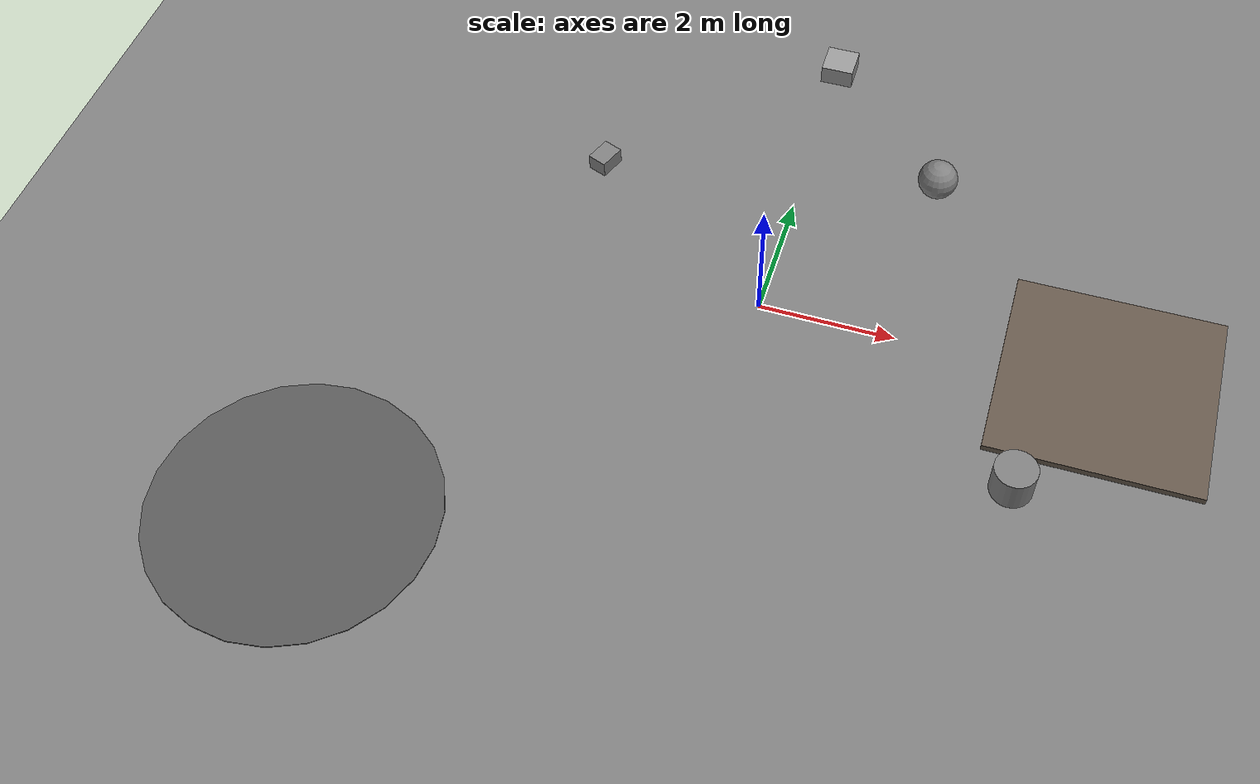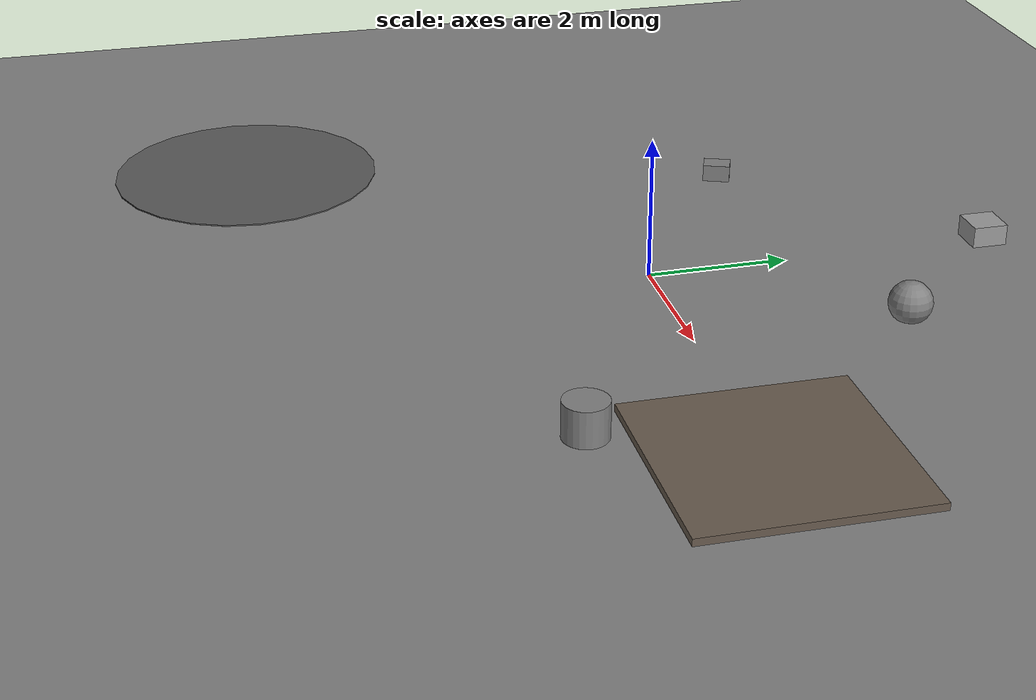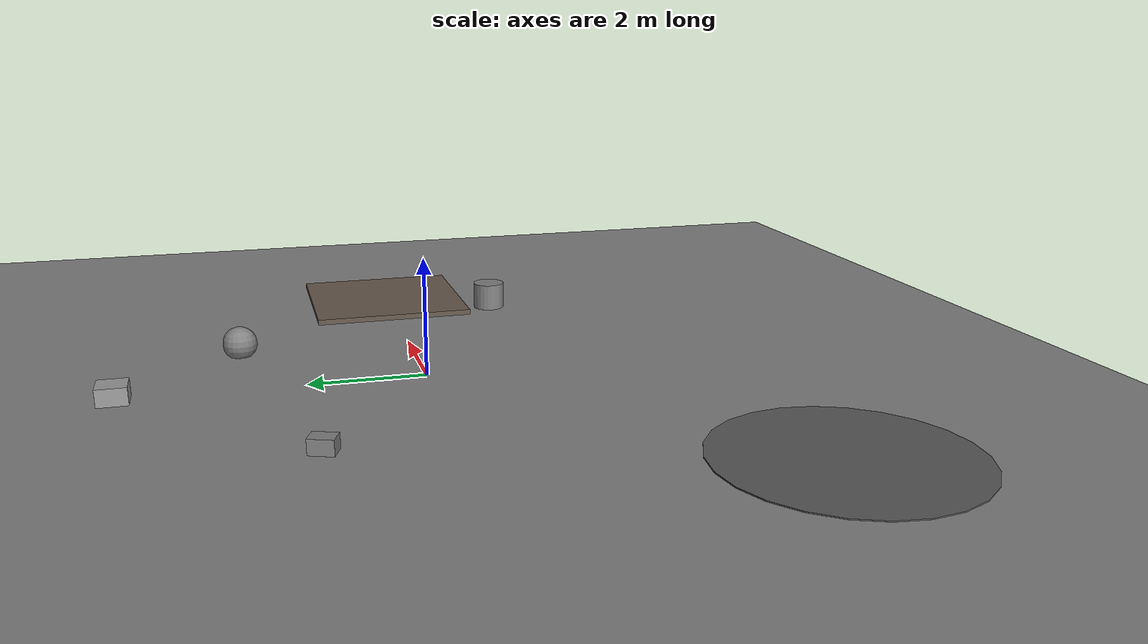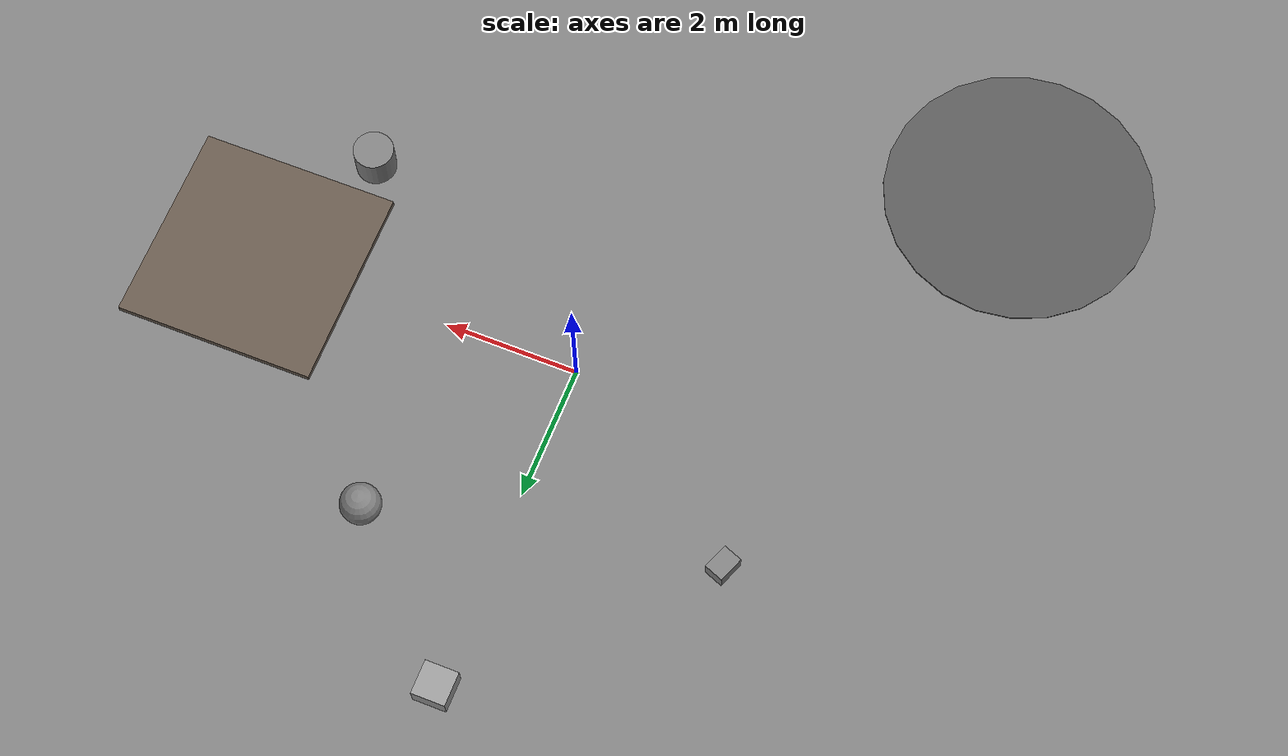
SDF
<?xml version="1.0"?>
<sdf version="1.6">
  <world name="lunar_arena">

    <!-- Physics -->
    <physics type="ode">
      <max_step_size>0.001</max_step_size>
      <real_time_factor>1.0</real_time_factor>
      <real_time_update_rate>1000</real_time_update_rate>
      <gravity>0 0 -1.62</gravity> <!-- Moon gravity (1/6 of Earth) -->
    </physics>

    <!-- Lighting - Harsh lunar lighting -->
    <light type="directional" name="sun">
      <cast_shadows>true</cast_shadows>
      <pose>0 0 100 0 0 0</pose>
      <diffuse>1.0 1.0 1.0 1</diffuse>
      <specular>0.2 0.2 0.2 1</specular>
      <attenuation>
        <range>1000</range>
        <constant>0.9</constant>
        <linear>0.01</linear>
        <quadratic>0.001</quadratic>
      </attenuation>
      <direction>-0.5 0.1 -0.9</direction>
    </light>

    <!-- Ambient light (very low, like the moon) -->
    <scene>
      <ambient>0.1 0.1 0.1 1</ambient>
      <background>0.0 0.0 0.0 1</background>
      <shadows>true</shadows>
    </scene>

    <!-- Lunar surface ground plane -->
    <model name="lunar_ground">
      <static>true</static>
      <link name="link">
        <collision name="collision">
          <geometry>
            <plane>
              <normal>0 0 1</normal>
              <size>50 50</size>
            </plane>
          </geometry>
          <surface>
            <friction>
              <ode>
                <mu>0.8</mu>
                <mu2>0.8</mu2>
              </ode>
            </friction>
          </surface>
        </collision>
        <visual name="visual">
          <geometry>
            <plane>
              <normal>0 0 1</normal>
              <size>50 50</size>
            </plane>
          </geometry>
          <material>
            <ambient>0.4 0.4 0.4 1</ambient>
            <diffuse>0.5 0.5 0.5 1</diffuse>
            <specular>0.1 0.1 0.1 1</specular>
          </material>
        </visual>
      </link>
    </model>

    <!-- Regolith (lunar dust) area - Mining zone -->
    <model name="regolith_zone">
      <static>true</static>
      <pose>5 0 0.05 0 0 0</pose>
      <link name="link">
        <collision name="collision">
          <geometry>
            <box>
              <size>3 3 0.1</size>
            </box>
          </geometry>
          <surface>
            <friction>
              <ode>
                <mu>1.2</mu>
                <mu2>1.2</mu2>
              </ode>
            </friction>
          </surface>
        </collision>
        <visual name="visual">
          <geometry>
            <box>
              <size>3 3 0.1</size>
            </box>
          </geometry>
          <material>
            <ambient>0.3 0.25 0.2 1</ambient>
            <diffuse>0.4 0.35 0.3 1</diffuse>
          </material>
        </visual>
      </link>
    </model>

    <!-- Rocks/Obstacles -->
    <model name="rock_1">
      <static>true</static>
      <pose>2 3 0.2 0 0 0.5</pose>
      <link name="link">
        <collision name="collision">
          <geometry>
            <sphere>
              <radius>0.3</radius>
            </sphere>
          </geometry>
        </collision>
        <visual name="visual">
          <geometry>
            <sphere>
              <radius>0.3</radius>
            </sphere>
          </geometry>
          <material>
            <ambient>0.3 0.3 0.3 1</ambient>
            <diffuse>0.5 0.5 0.5 1</diffuse>
          </material>
        </visual>
      </link>
    </model>

    <model name="rock_2">
      <static>true</static>
      <pose>-3 2 0.15 0 0 1.2</pose>
      <link name="link">
        <collision name="collision">
          <geometry>
            <box>
              <size>0.4 0.3 0.25</size>
            </box>
          </geometry>
        </collision>
        <visual name="visual">
          <geometry>
            <box>
              <size>0.4 0.3 0.25</size>
            </box>
          </geometry>
          <material>
            <ambient>0.35 0.35 0.35 1</ambient>
            <diffuse>0.5 0.5 0.5 1</diffuse>
          </material>
        </visual>
      </link>
    </model>

    <model name="rock_3">
      <static>true</static>
      <pose>4 -2 0.25 0 0 0.8</pose>
      <link name="link">
        <collision name="collision">
          <geometry>
            <cylinder>
              <radius>0.3</radius>
              <length>0.5</length>
            </cylinder>
          </geometry>
        </collision>
        <visual name="visual">
          <geometry>
            <cylinder>
              <radius>0.3</radius>
              <length>0.5</length>
            </cylinder>
          </geometry>
          <material>
            <ambient>0.32 0.32 0.32 1</ambient>
            <diffuse>0.5 0.5 0.5 1</diffuse>
          </material>
        </visual>
      </link>
    </model>

    <!-- Small crater -->
    <model name="crater">
      <static>true</static>
      <pose>-5 -5 -0.3 0 0 0</pose>
      <link name="link">
        <collision name="collision">
          <geometry>
            <cylinder>
              <radius>2.0</radius>
              <length>0.6</length>
            </cylinder>
          </geometry>
        </collision>
        <visual name="visual">
          <geometry>
            <cylinder>
              <radius>2.0</radius>
              <length>0.6</length>
            </cylinder>
          </geometry>
          <material>
            <ambient>0.25 0.25 0.25 1</ambient>
            <diffuse>0.35 0.35 0.35 1</diffuse>
          </material>
        </visual>
      </link>
    </model>

    <!-- Competition obstacles -->
    <model name="obstacle_1">
      <static>true</static>
      <pose>0 5 0.15 0 0 0</pose>
      <link name="link">
        <collision name="collision">
          <geometry>
            <box>
              <size>0.5 0.5 0.3</size>
            </box>
          </geometry>
        </collision>
        <visual name="visual">
          <geometry>
            <box>
              <size>0.5 0.5 0.3</size>
            </box>
          </geometry>
          <material>
            <ambient>0.4 0.4 0.4 1</ambient>
            <diffuse>0.6 0.6 0.6 1</diffuse>
          </material>
        </visual>
      </link>
    </model>

  </world>
</sdf>
